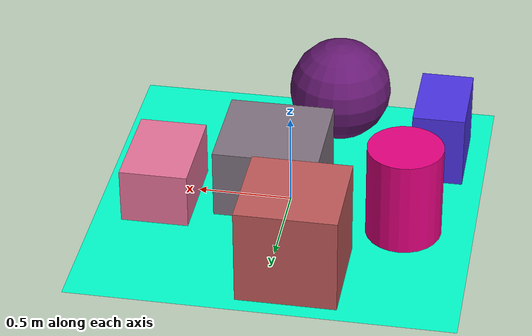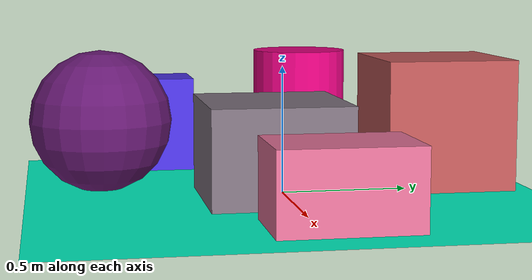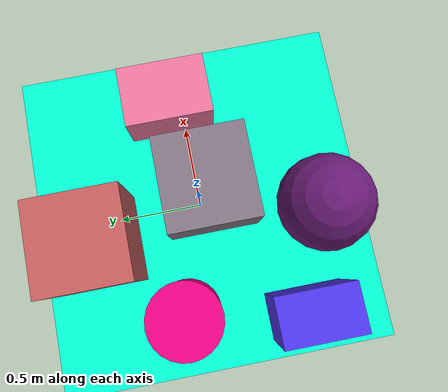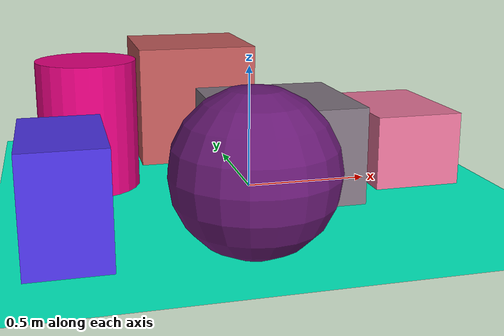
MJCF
<mujoco>
   <asset>
<texture type="skybox" builtin="gradient" rgb1="0.4 0.2 0.2" rgb2="0.3 0.3 0.7" width="256" height="256"/>
<texture name="checker_0" builtin="checker" type="2d" rgb1="0.8 0.2 1.0" rgb2="1.0 0.7 0.2" width="200" height="200"/>
<texture name="flat_1" builtin="flat" rgb1="0.3 0.2 0.9" rgb2="0.3 0.2 0.9"  width="200" height="200"/>
<texture name="checker_2" builtin="checker" type="2d" rgb1="0.1 0.0 0.7" rgb2="0.7 0.2 0.2" width="200" height="200"/>
<texture name="gradient_3" builtin="gradient" rgb1="0.8 0.5 0.4" rgb2="0.7 0.2 0.3" width="200" height="200"/>
<texture name="checker_4" builtin="checker" type="2d" rgb1="0.7 0.2 0.6" rgb2="0.3 0.7 0.4" width="200" height="200"/>
<texture name="flat_5" builtin="flat" rgb1="0.9 0.0 0.5" rgb2="0.9 0.0 0.5"  width="200" height="200"/><material name="checker_0_mat" reflectance="0" texrepeat="6 6" texture="checker_0" texuniform="false" />
<material name="flat_1_mat" reflectance="0" texture="flat_1" texuniform="true"/>
<material name="checker_2_mat" reflectance="0" texrepeat="9 9" texture="checker_2" texuniform="false" />
<material name="gradient_3_mat" reflectance="0" texture="gradient_3" texuniform="true"/>
<material name="checker_4_mat" reflectance="0" texrepeat="5 5" texture="checker_4" texuniform="false" />
<material name="flat_5_mat" reflectance="0" texture="flat_5" texuniform="true"/>
   </asset>

   <worldbody>
      <light diffuse=".9 .9 .9" pos="0 0 3" dir="0 0 -1"/>
     <geom type="plane" size="1 1 0.1" rgba="0.0 1.0 0.8 1"/>
<geom type="box" pos="0.67 0.08 0.15" size="0.18 0.26 0.15" material="checker_0_mat" />
<geom type="box" pos="-0.75 -0.51 0.2" size="0.14 0.23 0.2" material="flat_1_mat" />
<geom type="sphere" pos="-0.16 -0.7 0.28" size="0.28 0.28 0.28" material="checker_2_mat" />
<geom type="box" pos="-0.13 0.66 0.26" size="0.26 0.26 0.26" material="gradient_3_mat" />
<geom type="box" pos="0.1 -0.06 0.19" size="0.28 0.27 0.19" material="checker_4_mat" />
<geom type="cylinder" pos="-0.63 0.19 0.26" size="0.2 0.26 0.26" material="flat_5_mat" /><camera euler="60 0 180" fovy="60" name="camera_a" pos="0 -1.5 1"></camera>   </worldbody>
</mujoco>
